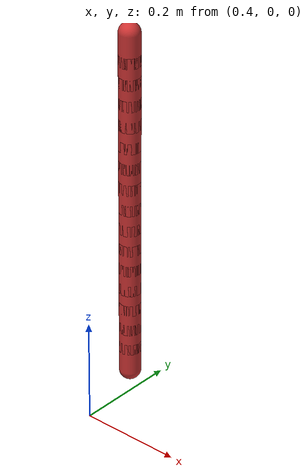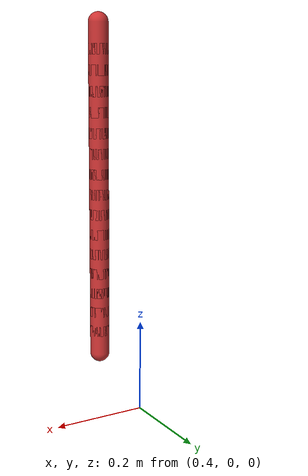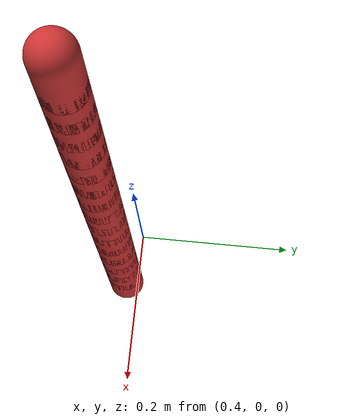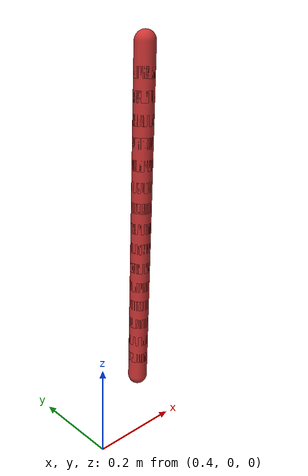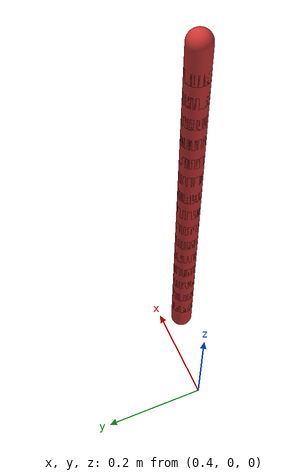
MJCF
<mujoco model="rope_capsule_mjcf">
    <asset>
        <mesh name="segment_capsule" file="segment_capsule.stl" scale="1 1 1"/>
    </asset>

    <!-- 2) Provide defaults for friction, density, etc. -->
    <default>
        <default class="rope">
            <!-- Must specify type="mesh" for each geom in PyBullet’s partial MJCF -->
            <geom type="mesh" mesh="segment_capsule" density="1140" friction="0.5"
                  rgba="0.8 0.2 0.2 1"/>
            <joint damping="0.1" stiffness="0.2" armature="0.01"/>
        </default>
    </default>

    <worldbody>
        <body name="segment_0" pos="0.5 0 0.8" childclass="rope">
            <!-- Provide type="mesh" as well here -->
            <geom name="geom_0" type="mesh" mesh="segment_capsule" />

            <joint name="joint_0" type="ball" pos="0 0 0.0175625" axis="1 1 1"/>

            <!-- Next segment, offset by pos="0 0 -0.04125" so it extends downward -->
            <body name="segment_1" pos="0 0 -0.04125">
                <geom name="geom_1" type="mesh" mesh="segment_capsule"/>
                <joint name="joint_1" type="ball" pos="0 0 0.0175625" axis="1 1 1"/>

                <body name="segment_2" pos="0 0 -0.04125">
                    <geom name="geom_2" type="mesh" mesh="segment_capsule"/>
                    <joint name="joint_2" type="ball" pos="0 0 0.0175625" axis="1 1 1"/>

                    <body name="segment_3" pos="0 0 -0.04125">
                        <geom name="geom_3" type="mesh" mesh="segment_capsule"/>
                        <joint name="joint_3" type="ball" pos="0 0 0.0175625" axis="1 1 1"/>

                        <body name="segment_4" pos="0 0 -0.04125">
                            <geom name="geom_4" type="mesh" mesh="segment_capsule"/>
                            <joint name="joint_4" type="ball" pos="0 0 0.0175625" axis="1 1 1"/>

                            <body name="segment_5" pos="0 0 -0.04125">
                                <geom name="geom_5" type="mesh" mesh="segment_capsule"/>
                                <joint name="joint_5" type="ball" pos="0 0 0.0175625" axis="1 1 1"/>

                                <body name="segment_6" pos="0 0 -0.04125">
                                    <geom name="geom_6" type="mesh" mesh="segment_capsule"/>
                                    <joint name="joint_6" type="ball" pos="0 0 0.0175625" axis="1 1 1"/>

                                    <body name="segment_7" pos="0 0 -0.04125">
                                        <geom name="geom_7" type="mesh" mesh="segment_capsule"/>
                                        <joint name="joint_7" type="ball" pos="0 0 0.0175625" axis="1 1 1"/>

                                        <body name="segment_8" pos="0 0 -0.04125">
                                            <geom name="geom_8" type="mesh" mesh="segment_capsule"/>
                                            <joint name="joint_8" type="ball" pos="0 0 0.0175625" axis="1 1 1"/>

                                            <body name="segment_9" pos="0 0 -0.04125">
                                                <geom name="geom_9" type="mesh" mesh="segment_capsule"/>
                                                <joint name="joint_9" type="ball" pos="0 0 0.0175625" axis="1 1 1"/>

                                                <body name="segment_10" pos="0 0 -0.04125">
                                                    <geom name="geom_10" type="mesh" mesh="segment_capsule"/>
                                                    <joint name="joint_10" type="ball" pos="0 0 0.0175625" axis="1 1 1"/>

                                                    <body name="segment_11" pos="0 0 -0.04125">
                                                        <geom name="geom_11" type="mesh" mesh="segment_capsule"/>
                                                        <joint name="joint_11" type="ball" pos="0 0 0.0175625" axis="1 1 1"/>

                                                        <body name="segment_12" pos="0 0 -0.04125">
                                                            <geom name="geom_12" type="mesh" mesh="segment_capsule"/>
                                                            <joint name="joint_12" type="ball" pos="0 0 0.0175625" axis="1 1 1"/>

                                                            <body name="segment_13" pos="0 0 -0.04125">
                                                                <geom name="geom_13" type="mesh" mesh="segment_capsule"/>
                                                                <joint name="joint_13" type="ball" pos="0 0 0.0175625" axis="1 1 1"/>

                                                                <body name="segment_14" pos="0 0 -0.04125">
                                                                    <geom name="geom_14" type="mesh" mesh="segment_capsule"/>
                                                                    <joint name="joint_14" type="ball" pos="0 0 0.0175625" axis="1 1 1"/>

                                                                    <body name="segment_15" pos="0 0 -0.04125">
                                                                        <geom name="geom_15" type="mesh" mesh="segment_capsule"/>
                                                                        <joint name="joint_15" type="ball" pos="0 0 0.0175625" axis="1 1 1"/>
                                                                    </body>
                                                                </body>
                                                            </body>
                                                        </body>
                                                    </body>
                                                </body>
                                            </body>
                                        </body>
                                    </body>
                                </body>
                            </body>
                        </body>
                    </body>
                </body>
            </body>
        </body>
    </worldbody>
</mujoco>
